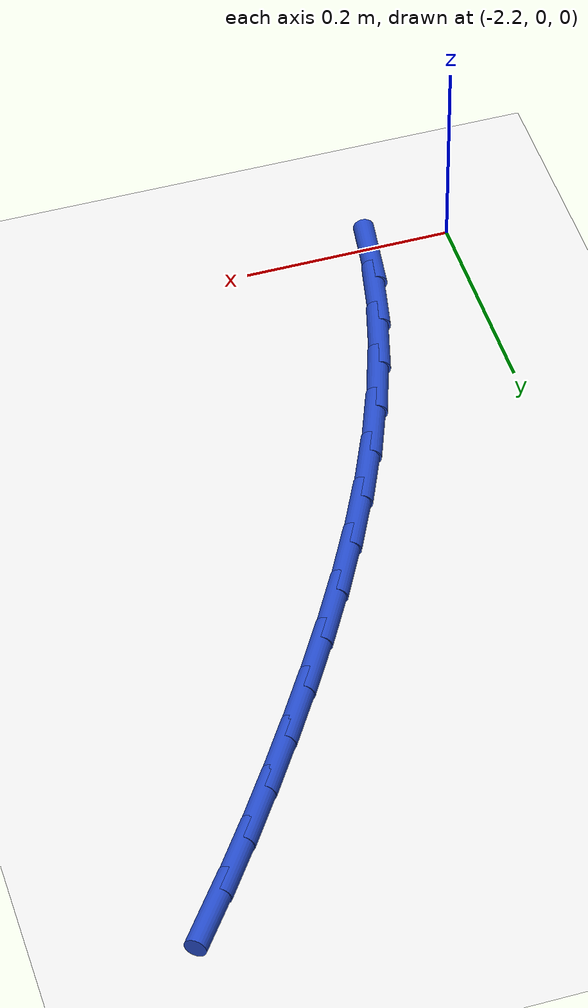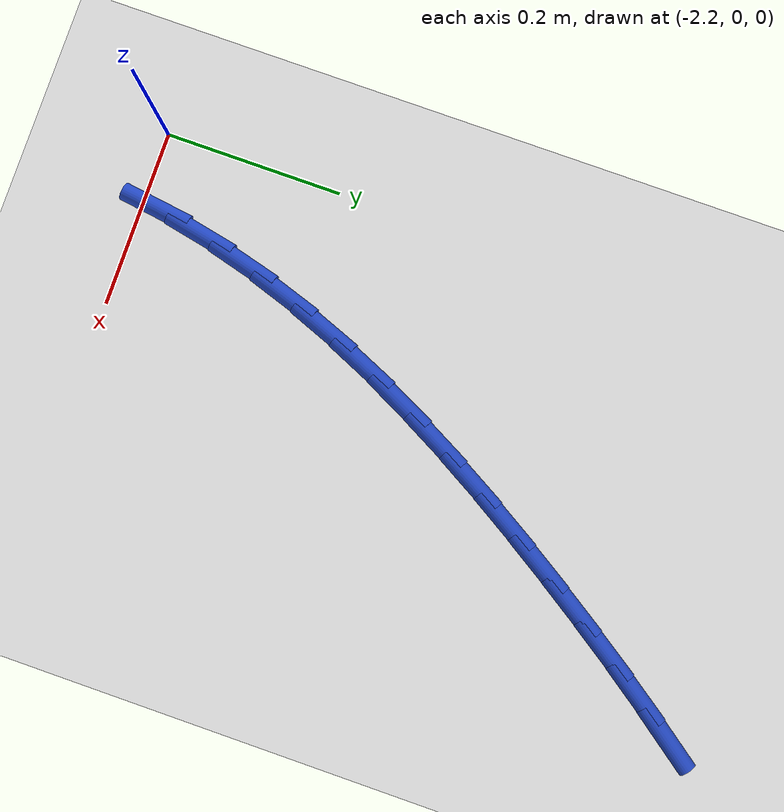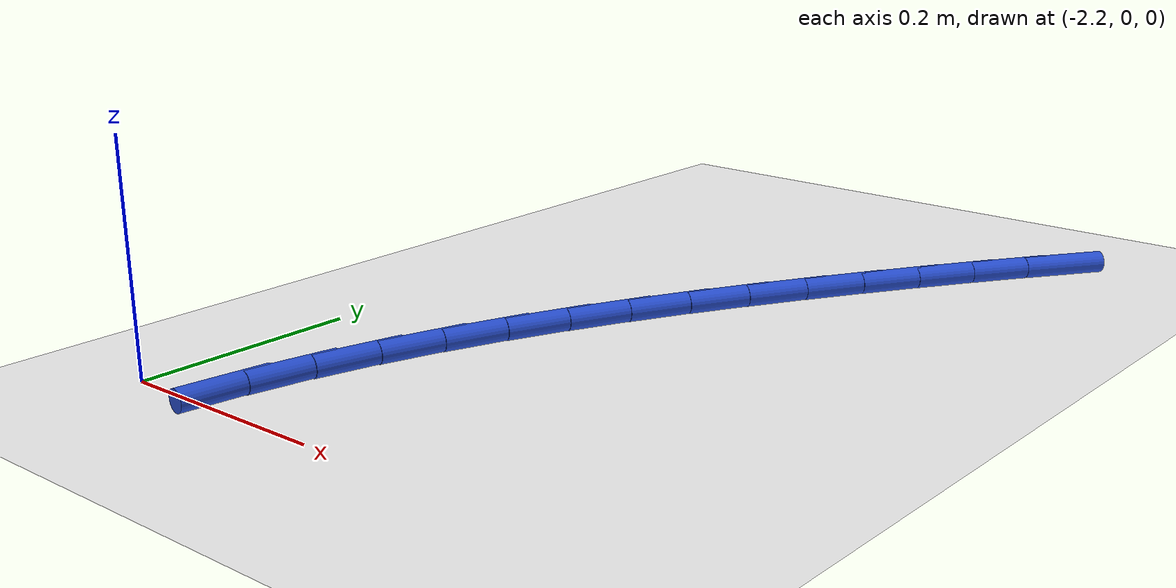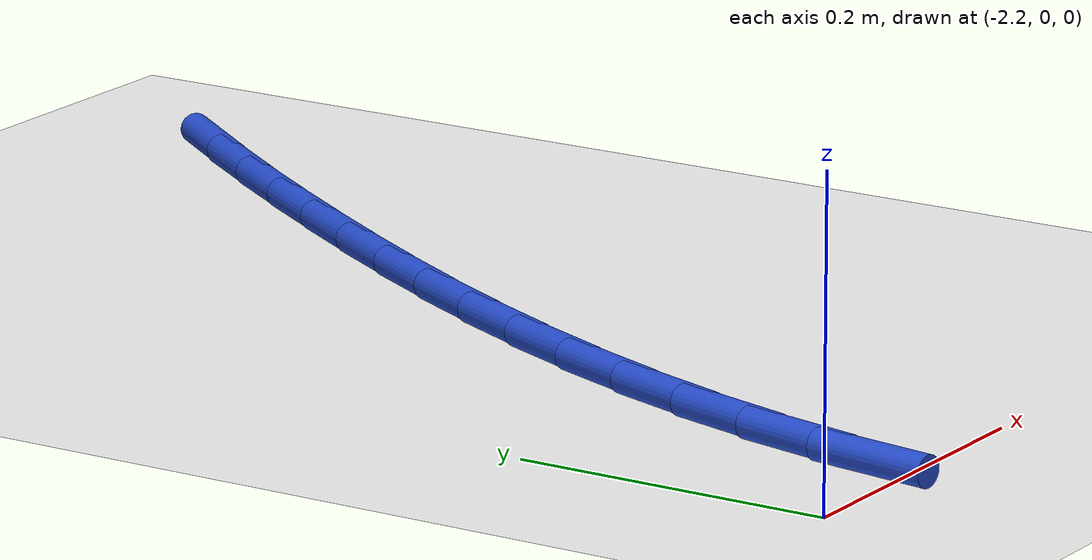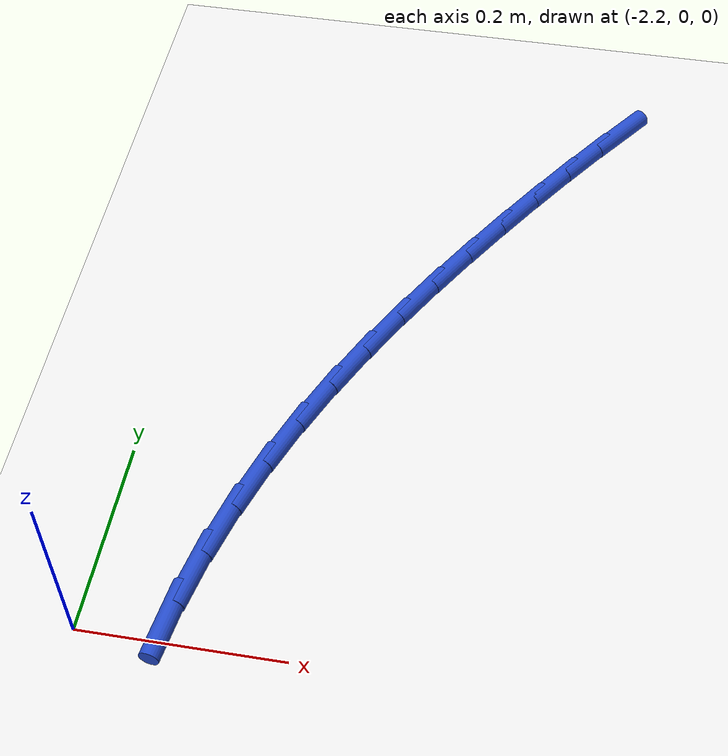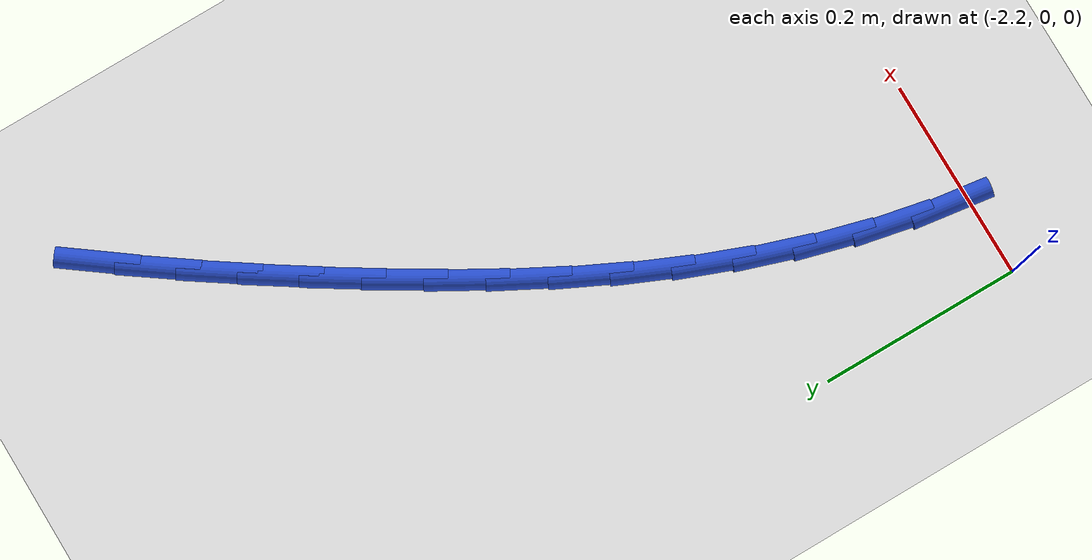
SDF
<sdf version="1.6">
 <world name="default">
  <model name="ground_plane">
   <static>1</static>
   <link name="link">
    <collision name="collision">
     <geometry><plane><normal>0 0 1</normal><size>100 100</size></plane></geometry>
     <surface><friction><ode><mu>100</mu><mu2>50</mu2></ode></friction></surface>
    </collision>
    <visual name="visual">
     <cast_shadows>0</cast_shadows>
     <geometry><plane><normal>0 0 1</normal><size>100 100</size></plane></geometry>
     <material>
      <script><uri>file://media/materials/scripts/gazebo.material</uri><name>Gazebo/WhiteGlow</name></script>
     </material>
    </visual>
   </link>
  </model>
  <model name="line">
   <link name="link_45">
    <pose>-1.7597805721893593 0.7219764647655299 0.01 0 1.57 0.9339572939876968</pose>
    <collision name="collision">
     <geometry><cylinder><radius>0.01</radius><length>0.08</length></cylinder></geometry>
    </collision>
    <visual name="visual">
     <material>
      <script><name>Gazebo/Blue</name><uri>file://media/materials/scripts/gazebo.material</uri></script>
     </material>
     <geometry><cylinder><radius>0.01</radius><length>0.08</length></cylinder></geometry>
    </visual>
   </link>
   <link name="link_46">
    <pose>-1.7933662035628144 0.6765685153491069 0.01 0 1.57 0.956617084224418</pose>
    <collision name="collision">
     <geometry><cylinder><radius>0.01</radius><length>0.08</length></cylinder></geometry>
    </collision>
    <visual name="visual">
     <material>
      <script><name>Gazebo/Blue</name><uri>file://media/materials/scripts/gazebo.material</uri></script>
     </material>
     <geometry><cylinder><radius>0.01</radius><length>0.08</length></cylinder></geometry>
    </visual>
   </link>
   <link name="link_47">
    <pose>-1.8259865656926282 0.6303088572291957 0.01 0 1.57 0.9760531820693719</pose>
    <collision name="collision">
     <geometry><cylinder><radius>0.01</radius><length>0.08</length></cylinder></geometry>
    </collision>
    <visual name="visual">
     <material>
      <script><name>Gazebo/Blue</name><uri>file://media/materials/scripts/gazebo.material</uri></script>
     </material>
     <geometry><cylinder><radius>0.01</radius><length>0.08</length></cylinder></geometry>
    </visual>
   </link>
   <link name="link_48">
    <pose>-1.8577992226548592 0.5832798185173298 0.01 0 1.57 0.9923273695097723</pose>
    <collision name="collision">
     <geometry><cylinder><radius>0.01</radius><length>0.08</length></cylinder></geometry>
    </collision>
    <visual name="visual">
     <material>
      <script><name>Gazebo/Blue</name><uri>file://media/materials/scripts/gazebo.material</uri></script>
     </material>
     <geometry><cylinder><radius>0.01</radius><length>0.08</length></cylinder></geometry>
    </visual>
   </link>
   <link name="link_49">
    <pose>-1.888957661077658 0.5355627004925524 0.01 0 1.57 1.0085100845241781</pose>
    <collision name="collision">
     <geometry><cylinder><radius>0.01</radius><length>0.08</length></cylinder></geometry>
    </collision>
    <visual name="visual">
     <material>
      <script><name>Gazebo/Blue</name><uri>file://media/materials/scripts/gazebo.material</uri></script>
     </material>
     <geometry><cylinder><radius>0.01</radius><length>0.08</length></cylinder></geometry>
    </visual>
   </link>
   <link name="link_50">
    <pose>-1.9194367734853044 0.48719382869602396 0.01 0 1.57 1.0288364413860174</pose>
    <collision name="collision">
     <geometry><cylinder><radius>0.01</radius><length>0.08</length></cylinder></geometry>
    </collision>
    <visual name="visual">
     <material>
      <script><name>Gazebo/Blue</name><uri>file://media/materials/scripts/gazebo.material</uri></script>
     </material>
     <geometry><cylinder><radius>0.01</radius><length>0.08</length></cylinder></geometry>
    </visual>
   </link>
   <link name="link_51">
    <pose>-1.9489671151058419 0.4381479966812757 0.01 0 1.57 1.0537052763092967</pose>
    <collision name="collision">
     <geometry><cylinder><radius>0.01</radius><length>0.08</length></cylinder></geometry>
    </collision>
    <visual name="visual">
     <material>
      <script><name>Gazebo/Blue</name><uri>file://media/materials/scripts/gazebo.material</uri></script>
     </material>
     <geometry><cylinder><radius>0.01</radius><length>0.08</length></cylinder></geometry>
    </visual>
   </link>
   <link name="link_52">
    <pose>-1.9772616088144024 0.3883955576084219 0.01 0 1.57 1.0832435317919686</pose>
    <collision name="collision">
     <geometry><cylinder><radius>0.01</radius><length>0.08</length></cylinder></geometry>
    </collision>
    <visual name="visual">
     <material>
      <script><name>Gazebo/Blue</name><uri>file://media/materials/scripts/gazebo.material</uri></script>
     </material>
     <geometry><cylinder><radius>0.01</radius><length>0.08</length></cylinder></geometry>
    </visual>
   </link>
   <link name="link_53">
    <pose>-2.004033177486116 0.3379068646375786 0.01 0 1.57 1.1175935628183253</pose>
    <collision name="collision">
     <geometry><cylinder><radius>0.01</radius><length>0.08</length></cylinder></geometry>
    </collision>
    <visual name="visual">
     <material>
      <script><name>Gazebo/Blue</name><uri>file://media/materials/scripts/gazebo.material</uri></script>
     </material>
     <geometry><cylinder><radius>0.01</radius><length>0.08</length></cylinder></geometry>
    </visual>
   </link>
   <link name="link_54">
    <pose>-2.0289947439961153 0.28665227092886003 0.01 0 1.57 1.156894421234252</pose>
    <collision name="collision">
     <geometry><cylinder><radius>0.01</radius><length>0.08</length></cylinder></geometry>
    </collision>
    <visual name="visual">
     <material>
      <script><name>Gazebo/Blue</name><uri>file://media/materials/scripts/gazebo.material</uri></script>
     </material>
     <geometry><cylinder><radius>0.01</radius><length>0.08</length></cylinder></geometry>
    </visual>
   </link>
   <link name="link_55">
    <pose>-2.051859231219531 0.23460212964238222 0.01 0 1.57 1.2012577633736319</pose>
    <collision name="collision">
     <geometry><cylinder><radius>0.01</radius><length>0.08</length></cylinder></geometry>
    </collision>
    <visual name="visual">
     <material>
      <script><name>Gazebo/Blue</name><uri>file://media/materials/scripts/gazebo.material</uri></script>
     </material>
     <geometry><cylinder><radius>0.01</radius><length>0.08</length></cylinder></geometry>
    </visual>
   </link>
   <link name="link_56">
    <pose>-2.072339562031494 0.18172679393825947 0.01 0 1.57 1.2507378700230816</pose>
    <collision name="collision">
     <geometry><cylinder><radius>0.01</radius><length>0.08</length></cylinder></geometry>
    </collision>
    <visual name="visual">
     <material>
      <script><name>Gazebo/Blue</name><uri>file://media/materials/scripts/gazebo.material</uri></script>
     </material>
     <geometry><cylinder><radius>0.01</radius><length>0.08</length></cylinder></geometry>
    </visual>
   </link>
   <link name="link_57">
    <pose>-2.0901486593071352 0.12799661697660772 0.01 0 1.57 1.3052963806058993</pose>
    <collision name="collision">
     <geometry><cylinder><radius>0.01</radius><length>0.08</length></cylinder></geometry>
    </collision>
    <visual name="visual">
     <material>
      <script><name>Gazebo/Blue</name><uri>file://media/materials/scripts/gazebo.material</uri></script>
     </material>
     <geometry><cylinder><radius>0.01</radius><length>0.08</length></cylinder></geometry>
    </visual>
   </link>
   <link name="link_58">
    <pose>-2.1049994459215875 0.07338195191754146 0.01 0 1.57 1.364764164617103</pose>
    <collision name="collision">
     <geometry><cylinder><radius>0.01</radius><length>0.08</length></cylinder></geometry>
    </collision>
    <visual name="visual">
     <material>
      <script><name>Gazebo/Blue</name><uri>file://media/materials/scripts/gazebo.material</uri></script>
     </material>
     <geometry><cylinder><radius>0.01</radius><length>0.08</length></cylinder></geometry>
    </visual>
   </link>
   <link name="link_59">
    <pose>-2.1166048447499812 0.017853151921176452 0.01 0 1.57 1.4280746740141113</pose>
    <collision name="collision">
     <geometry><cylinder><radius>0.01</radius><length>0.08</length></cylinder></geometry>
    </collision>
    <visual name="visual">
     <material>
      <script><name>Gazebo/Blue</name><uri>file://media/materials/scripts/gazebo.material</uri></script>
     </material>
     <geometry><cylinder><radius>0.01</radius><length>0.08</length></cylinder></geometry>
    </visual>
   </link>
  </model>
 </world>
</sdf>
